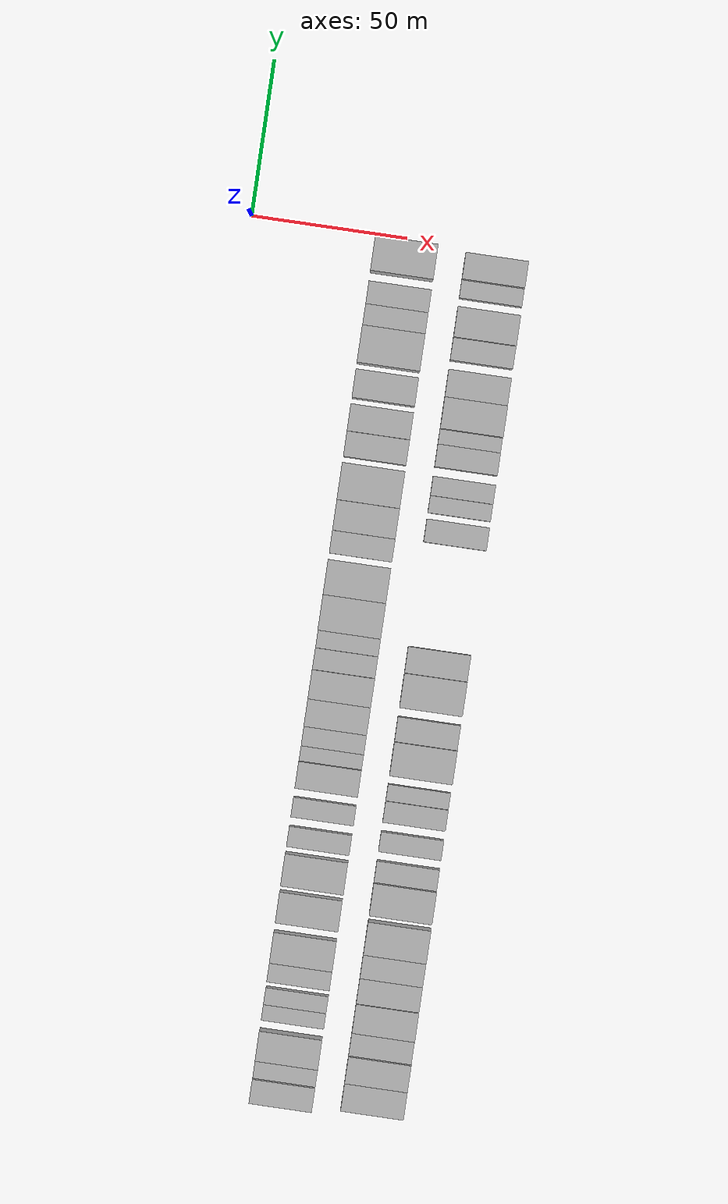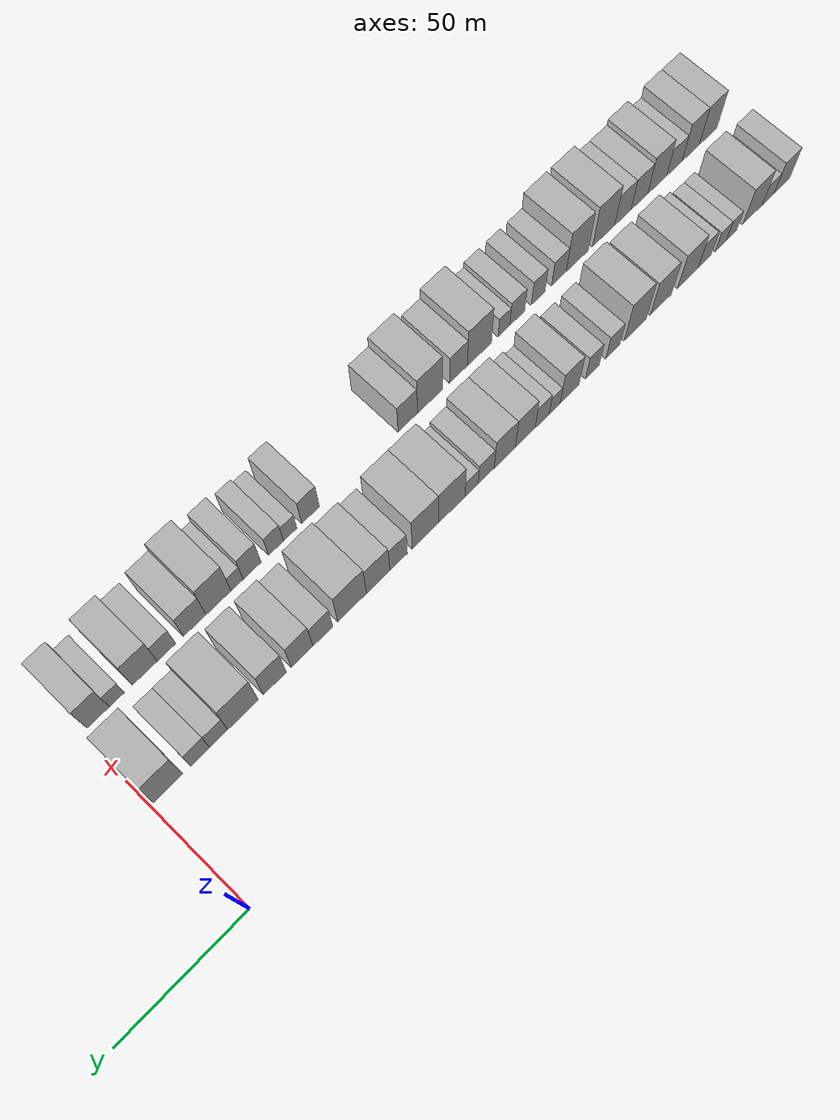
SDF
<sdf version="1.6">
 <world name="default">
  <model name="building_1">
   <static>1</static>
   <pose>50.0000 -274.1434 0 0.000000 0.000000 0.000000</pose>
   <link name="link">
    <pose>0 0 9.00 0 0 0</pose>
    <collision name="collision"><geometry><box><size>20.0000 7.7133 18.0000</size></box></geometry></collision>
    <visual name="visual">
     <cast_shadows>0</cast_shadows>
     <geometry><box><size>20.0000 7.7133 18.0000</size></box></geometry>
     <material>
      <script>
       <uri>model://HANNAS_wall/materials/scripts</uri>
       <uri>model://HANNAS_wall/materials/textures</uri>
       <name>vrc/HANNAS_wall</name>
      </script>
     </material>
    </visual>
   </link>
  </model>
  <model name="building_2">
   <static>1</static>
   <pose>50.0000 -267.2990 0 0.000000 0.000000 0.000000</pose>
   <link name="link">
    <pose>0 0 6.00 0 0 0</pose>
    <collision name="collision"><geometry><box><size>20.0000 5.9753 12.0000</size></box></geometry></collision>
    <visual name="visual">
     <cast_shadows>0</cast_shadows>
     <geometry><box><size>20.0000 5.9753 12.0000</size></box></geometry>
     <material>
      <script>
       <uri>model://HANNAS_wall/materials/scripts</uri>
       <uri>model://HANNAS_wall/materials/textures</uri>
       <name>vrc/HANNAS_wall</name>
      </script>
     </material>
    </visual>
   </link>
  </model>
  <model name="building_3">
   <static>1</static>
   <pose>50.0000 -259.5377 0 0.000000 0.000000 0.000000</pose>
   <link name="link">
    <pose>0 0 10.50 0 0 0</pose>
    <collision name="collision"><geometry><box><size>20.0000 9.5473 21.0000</size></box></geometry></collision>
    <visual name="visual">
     <cast_shadows>0</cast_shadows>
     <geometry><box><size>20.0000 9.5473 21.0000</size></box></geometry>
     <material>
      <script>
       <uri>model://HANNAS_wall/materials/scripts</uri>
       <uri>model://HANNAS_wall/materials/textures</uri>
       <name>vrc/HANNAS_wall</name>
      </script>
     </material>
    </visual>
   </link>
  </model>
  <model name="building_4">
   <static>1</static>
   <pose>50.0000 -249.2695 0 0.000000 0.000000 0.000000</pose>
   <link name="link">
    <pose>0 0 6.00 0 0 0</pose>
    <collision name="collision"><geometry><box><size>20.0000 4.9893 12.0000</size></box></geometry></collision>
    <visual name="visual">
     <cast_shadows>0</cast_shadows>
     <geometry><box><size>20.0000 4.9893 12.0000</size></box></geometry>
     <material>
      <script>
       <uri>model://HANNAS_wall/materials/scripts</uri>
       <uri>model://HANNAS_wall/materials/textures</uri>
       <name>vrc/HANNAS_wall</name>
      </script>
     </material>
    </visual>
   </link>
  </model>
  <model name="building_5">
   <static>1</static>
   <pose>50.0000 -244.0601 0 0.000000 0.000000 0.000000</pose>
   <link name="link">
    <pose>0 0 6.00 0 0 0</pose>
    <collision name="collision"><geometry><box><size>20.0000 5.4295 12.0000</size></box></geometry></collision>
    <visual name="visual">
     <cast_shadows>0</cast_shadows>
     <geometry><box><size>20.0000 5.4295 12.0000</size></box></geometry>
     <material>
      <script>
       <uri>model://HANNAS_wall/materials/scripts</uri>
       <uri>model://HANNAS_wall/materials/textures</uri>
       <name>vrc/HANNAS_wall</name>
      </script>
     </material>
    </visual>
   </link>
  </model>
  <model name="building_6">
   <static>1</static>
   <pose>50.0000 -236.2115 0 0.000000 0.000000 0.000000</pose>
   <link name="link">
    <pose>0 0 7.50 0 0 0</pose>
    <collision name="collision"><geometry><box><size>20.0000 6.2675 15.0000</size></box></geometry></collision>
    <visual name="visual">
     <cast_shadows>0</cast_shadows>
     <geometry><box><size>20.0000 6.2675 15.0000</size></box></geometry>
     <material>
      <script>
       <uri>model://HANNAS_wall/materials/scripts</uri>
       <uri>model://HANNAS_wall/materials/textures</uri>
       <name>vrc/HANNAS_wall</name>
      </script>
     </material>
    </visual>
   </link>
  </model>
  <model name="building_7">
   <static>1</static>
   <pose>50.0000 -228.1773 0 0.000000 0.000000 0.000000</pose>
   <link name="link">
    <pose>0 0 10.50 0 0 0</pose>
    <collision name="collision"><geometry><box><size>20.0000 9.8010 21.0000</size></box></geometry></collision>
    <visual name="visual">
     <cast_shadows>0</cast_shadows>
     <geometry><box><size>20.0000 9.8010 21.0000</size></box></geometry>
     <material>
      <script>
       <uri>model://HANNAS_wall/materials/scripts</uri>
       <uri>model://HANNAS_wall/materials/textures</uri>
       <name>vrc/HANNAS_wall</name>
      </script>
     </material>
    </visual>
   </link>
  </model>
  <model name="building_8">
   <static>1</static>
   <pose>50.0000 -215.3446 0 0.000000 0.000000 0.000000</pose>
   <link name="link">
    <pose>0 0 10.50 0 0 0</pose>
    <collision name="collision"><geometry><box><size>20.0000 9.8645 21.0000</size></box></geometry></collision>
    <visual name="visual">
     <cast_shadows>0</cast_shadows>
     <geometry><box><size>20.0000 9.8645 21.0000</size></box></geometry>
     <material>
      <script>
       <uri>model://HANNAS_wall/materials/scripts</uri>
       <uri>model://HANNAS_wall/materials/textures</uri>
       <name>vrc/HANNAS_wall</name>
      </script>
     </material>
    </visual>
   </link>
  </model>
  <model name="building_9">
   <static>1</static>
   <pose>50.0000 -203.2781 0 0.000000 0.000000 0.000000</pose>
   <link name="link">
    <pose>0 0 12.00 0 0 0</pose>
    <collision name="collision"><geometry><box><size>20.0000 10.2684 24.0000</size></box></geometry></collision>
    <visual name="visual">
     <cast_shadows>0</cast_shadows>
     <geometry><box><size>20.0000 10.2684 24.0000</size></box></geometry>
     <material>
      <script>
       <uri>model://HANNAS_wall/materials/scripts</uri>
       <uri>model://HANNAS_wall/materials/textures</uri>
       <name>vrc/HANNAS_wall</name>
      </script>
     </material>
    </visual>
   </link>
  </model>
  <model name="building_10">
   <static>1</static>
   <pose>50.0000 -192.9101 0 0.000000 0.000000 0.000000</pose>
   <link name="link">
    <pose>0 0 7.50 0 0 0</pose>
    <collision name="collision"><geometry><box><size>20.0000 6.4676 15.0000</size></box></geometry></collision>
    <visual name="visual">
     <cast_shadows>0</cast_shadows>
     <geometry><box><size>20.0000 6.4676 15.0000</size></box></geometry>
     <material>
      <script>
       <uri>model://HANNAS_wall/materials/scripts</uri>
       <uri>model://HANNAS_wall/materials/textures</uri>
       <name>vrc/HANNAS_wall</name>
      </script>
     </material>
    </visual>
   </link>
  </model>
  <model name="building_11">
   <static>1</static>
   <pose>50.0000 -183.5272 0 0.000000 0.000000 0.000000</pose>
   <link name="link">
    <pose>0 0 7.50 0 0 0</pose>
    <collision name="collision"><geometry><box><size>20.0000 6.2981 15.0000</size></box></geometry></collision>
    <visual name="visual">
     <cast_shadows>0</cast_shadows>
     <geometry><box><size>20.0000 6.2981 15.0000</size></box></geometry>
     <material>
      <script>
       <uri>model://HANNAS_wall/materials/scripts</uri>
       <uri>model://HANNAS_wall/materials/textures</uri>
       <name>vrc/HANNAS_wall</name>
      </script>
     </material>
    </visual>
   </link>
  </model>
  <model name="building_12">
   <static>1</static>
   <pose>50.0000 -173.1050 0 0.000000 0.000000 0.000000</pose>
   <link name="link">
    <pose>0 0 10.50 0 0 0</pose>
    <collision name="collision"><geometry><box><size>20.0000 8.5462 21.0000</size></box></geometry></collision>
    <visual name="visual">
     <cast_shadows>0</cast_shadows>
     <geometry><box><size>20.0000 8.5462 21.0000</size></box></geometry>
     <material>
      <script>
       <uri>model://HANNAS_wall/materials/scripts</uri>
       <uri>model://HANNAS_wall/materials/textures</uri>
       <name>vrc/HANNAS_wall</name>
      </script>
     </material>
    </visual>
   </link>
  </model>
  <model name="building_13">
   <static>1</static>
   <pose>50.0000 -166.3974 0 0.000000 0.000000 0.000000</pose>
   <link name="link">
    <pose>0 0 6.00 0 0 0</pose>
    <collision name="collision"><geometry><box><size>20.0000 4.8691 12.0000</size></box></geometry></collision>
    <visual name="visual">
     <cast_shadows>0</cast_shadows>
     <geometry><box><size>20.0000 4.8691 12.0000</size></box></geometry>
     <material>
      <script>
       <uri>model://HANNAS_wall/materials/scripts</uri>
       <uri>model://HANNAS_wall/materials/textures</uri>
       <name>vrc/HANNAS_wall</name>
      </script>
     </material>
    </visual>
   </link>
  </model>
  <model name="building_14">
   <static>1</static>
   <pose>50.0000 -160.8092 0 0.000000 0.000000 0.000000</pose>
   <link name="link">
    <pose>0 0 7.50 0 0 0</pose>
    <collision name="collision"><geometry><box><size>20.0000 6.3073 15.0000</size></box></geometry></collision>
    <visual name="visual">
     <cast_shadows>0</cast_shadows>
     <geometry><box><size>20.0000 6.3073 15.0000</size></box></geometry>
     <material>
      <script>
       <uri>model://HANNAS_wall/materials/scripts</uri>
       <uri>model://HANNAS_wall/materials/textures</uri>
       <name>vrc/HANNAS_wall</name>
      </script>
     </material>
    </visual>
   </link>
  </model>
  <model name="building_15">
   <static>1</static>
   <pose>50.0000 -153.2628 0 0.000000 0.000000 0.000000</pose>
   <link name="link">
    <pose>0 0 10.50 0 0 0</pose>
    <collision name="collision"><geometry><box><size>20.0000 8.7855 21.0000</size></box></geometry></collision>
    <visual name="visual">
     <cast_shadows>0</cast_shadows>
     <geometry><box><size>20.0000 8.7855 21.0000</size></box></geometry>
     <material>
      <script>
       <uri>model://HANNAS_wall/materials/scripts</uri>
       <uri>model://HANNAS_wall/materials/textures</uri>
       <name>vrc/HANNAS_wall</name>
      </script>
     </material>
    </visual>
   </link>
  </model>
  <model name="building_16">
   <static>1</static>
   <pose>50.0000 -144.2227 0 0.000000 0.000000 0.000000</pose>
   <link name="link">
    <pose>0 0 10.50 0 0 0</pose>
    <collision name="collision"><geometry><box><size>20.0000 9.2948 21.0000</size></box></geometry></collision>
    <visual name="visual">
     <cast_shadows>0</cast_shadows>
     <geometry><box><size>20.0000 9.2948 21.0000</size></box></geometry>
     <material>
      <script>
       <uri>model://HANNAS_wall/materials/scripts</uri>
       <uri>model://HANNAS_wall/materials/textures</uri>
       <name>vrc/HANNAS_wall</name>
      </script>
     </material>
    </visual>
   </link>
  </model>
  <model name="building_17">
   <static>1</static>
   <pose>50.0000 -136.1297 0 0.000000 0.000000 0.000000</pose>
   <link name="link">
    <pose>0 0 7.50 0 0 0</pose>
    <collision name="collision"><geometry><box><size>20.0000 6.8911 15.0000</size></box></geometry></collision>
    <visual name="visual">
     <cast_shadows>0</cast_shadows>
     <geometry><box><size>20.0000 6.8911 15.0000</size></box></geometry>
     <material>
      <script>
       <uri>model://HANNAS_wall/materials/scripts</uri>
       <uri>model://HANNAS_wall/materials/textures</uri>
       <name>vrc/HANNAS_wall</name>
      </script>
     </material>
    </visual>
   </link>
  </model>
  <model name="building_18">
   <static>1</static>
   <pose>50.0000 -129.8239 0 0.000000 0.000000 0.000000</pose>
   <link name="link">
    <pose>0 0 6.00 0 0 0</pose>
    <collision name="collision"><geometry><box><size>20.0000 5.7206 12.0000</size></box></geometry></collision>
    <visual name="visual">
     <cast_shadows>0</cast_shadows>
     <geometry><box><size>20.0000 5.7206 12.0000</size></box></geometry>
     <material>
      <script>
       <uri>model://HANNAS_wall/materials/scripts</uri>
       <uri>model://HANNAS_wall/materials/textures</uri>
       <name>vrc/HANNAS_wall</name>
      </script>
     </material>
    </visual>
   </link>
  </model>
  <model name="building_19">
   <static>1</static>
   <pose>50.0000 -121.2929 0 0.000000 0.000000 0.000000</pose>
   <link name="link">
    <pose>0 0 12.00 0 0 0</pose>
    <collision name="collision"><geometry><box><size>20.0000 11.3414 24.0000</size></box></geometry></collision>
    <visual name="visual">
     <cast_shadows>0</cast_shadows>
     <geometry><box><size>20.0000 11.3414 24.0000</size></box></geometry>
     <material>
      <script>
       <uri>model://HANNAS_wall/materials/scripts</uri>
       <uri>model://HANNAS_wall/materials/textures</uri>
       <name>vrc/HANNAS_wall</name>
      </script>
     </material>
    </visual>
   </link>
  </model>
  <model name="building_20">
   <static>1</static>
   <pose>50.0000 -110.0250 0 0.000000 0.000000 0.000000</pose>
   <link name="link">
    <pose>0 0 12.00 0 0 0</pose>
    <collision name="collision"><geometry><box><size>20.0000 11.1943 24.0000</size></box></geometry></collision>
    <visual name="visual">
     <cast_shadows>0</cast_shadows>
     <geometry><box><size>20.0000 11.1943 24.0000</size></box></geometry>
     <material>
      <script>
       <uri>model://HANNAS_wall/materials/scripts</uri>
       <uri>model://HANNAS_wall/materials/textures</uri>
       <name>vrc/HANNAS_wall</name>
      </script>
     </material>
    </visual>
   </link>
  </model>
  <model name="building_21">
   <static>1</static>
   <pose>50.0000 -98.7826 0 0.000000 0.000000 0.000000</pose>
   <link name="link">
    <pose>0 0 9.00 0 0 0</pose>
    <collision name="collision"><geometry><box><size>20.0000 7.2906 18.0000</size></box></geometry></collision>
    <visual name="visual">
     <cast_shadows>0</cast_shadows>
     <geometry><box><size>20.0000 7.2906 18.0000</size></box></geometry>
     <material>
      <script>
       <uri>model://HANNAS_wall/materials/scripts</uri>
       <uri>model://HANNAS_wall/materials/textures</uri>
       <name>vrc/HANNAS_wall</name>
      </script>
     </material>
    </visual>
   </link>
  </model>
  <model name="building_22">
   <static>1</static>
   <pose>50.0000 -90.2696 0 0.000000 0.000000 0.000000</pose>
   <link name="link">
    <pose>0 0 10.50 0 0 0</pose>
    <collision name="collision"><geometry><box><size>20.0000 9.7353 21.0000</size></box></geometry></collision>
    <visual name="visual">
     <cast_shadows>0</cast_shadows>
     <geometry><box><size>20.0000 9.7353 21.0000</size></box></geometry>
     <material>
      <script>
       <uri>model://HANNAS_wall/materials/scripts</uri>
       <uri>model://HANNAS_wall/materials/textures</uri>
       <name>vrc/HANNAS_wall</name>
      </script>
     </material>
    </visual>
   </link>
  </model>
  <model name="building_23">
   <static>1</static>
   <pose>50.0000 -79.4878 0 0.000000 0.000000 0.000000</pose>
   <link name="link">
    <pose>0 0 12.00 0 0 0</pose>
    <collision name="collision"><geometry><box><size>20.0000 11.8283 24.0000</size></box></geometry></collision>
    <visual name="visual">
     <cast_shadows>0</cast_shadows>
     <geometry><box><size>20.0000 11.8283 24.0000</size></box></geometry>
     <material>
      <script>
       <uri>model://HANNAS_wall/materials/scripts</uri>
       <uri>model://HANNAS_wall/materials/textures</uri>
       <name>vrc/HANNAS_wall</name>
      </script>
     </material>
    </visual>
   </link>
  </model>
  <model name="building_24">
   <static>1</static>
   <pose>50.0000 -67.5209 0 0.000000 0.000000 0.000000</pose>
   <link name="link">
    <pose>0 0 9.00 0 0 0</pose>
    <collision name="collision"><geometry><box><size>20.0000 8.1056 18.0000</size></box></geometry></collision>
    <visual name="visual">
     <cast_shadows>0</cast_shadows>
     <geometry><box><size>20.0000 8.1056 18.0000</size></box></geometry>
     <material>
      <script>
       <uri>model://HANNAS_wall/materials/scripts</uri>
       <uri>model://HANNAS_wall/materials/textures</uri>
       <name>vrc/HANNAS_wall</name>
      </script>
     </material>
    </visual>
   </link>
  </model>
  <model name="building_25">
   <static>1</static>
   <pose>50.0000 -59.1467 0 0.000000 0.000000 0.000000</pose>
   <link name="link">
    <pose>0 0 10.50 0 0 0</pose>
    <collision name="collision"><geometry><box><size>20.0000 8.6426 21.0000</size></box></geometry></collision>
    <visual name="visual">
     <cast_shadows>0</cast_shadows>
     <geometry><box><size>20.0000 8.6426 21.0000</size></box></geometry>
     <material>
      <script>
       <uri>model://HANNAS_wall/materials/scripts</uri>
       <uri>model://HANNAS_wall/materials/textures</uri>
       <name>vrc/HANNAS_wall</name>
      </script>
     </material>
    </visual>
   </link>
  </model>
  <model name="building_26">
   <static>1</static>
   <pose>50.0000 -48.2642 0 0.000000 0.000000 0.000000</pose>
   <link name="link">
    <pose>0 0 10.50 0 0 0</pose>
    <collision name="collision"><geometry><box><size>20.0000 9.1225 21.0000</size></box></geometry></collision>
    <visual name="visual">
     <cast_shadows>0</cast_shadows>
     <geometry><box><size>20.0000 9.1225 21.0000</size></box></geometry>
     <material>
      <script>
       <uri>model://HANNAS_wall/materials/scripts</uri>
       <uri>model://HANNAS_wall/materials/textures</uri>
       <name>vrc/HANNAS_wall</name>
      </script>
     </material>
    </visual>
   </link>
  </model>
  <model name="building_27">
   <static>1</static>
   <pose>50.0000 -35.7431 0 0.000000 0.000000 0.000000</pose>
   <link name="link">
    <pose>0 0 12.00 0 0 0</pose>
    <collision name="collision"><geometry><box><size>20.0000 11.9196 24.0000</size></box></geometry></collision>
    <visual name="visual">
     <cast_shadows>0</cast_shadows>
     <geometry><box><size>20.0000 11.9196 24.0000</size></box></geometry>
     <material>
      <script>
       <uri>model://HANNAS_wall/materials/scripts</uri>
       <uri>model://HANNAS_wall/materials/textures</uri>
       <name>vrc/HANNAS_wall</name>
      </script>
     </material>
    </visual>
   </link>
  </model>
  <model name="building_28">
   <static>1</static>
   <pose>50.0000 -26.2708 0 0.000000 0.000000 0.000000</pose>
   <link name="link">
    <pose>0 0 7.50 0 0 0</pose>
    <collision name="collision"><geometry><box><size>20.0000 7.0249 15.0000</size></box></geometry></collision>
    <visual name="visual">
     <cast_shadows>0</cast_shadows>
     <geometry><box><size>20.0000 7.0249 15.0000</size></box></geometry>
     <material>
      <script>
       <uri>model://HANNAS_wall/materials/scripts</uri>
       <uri>model://HANNAS_wall/materials/textures</uri>
       <name>vrc/HANNAS_wall</name>
      </script>
     </material>
    </visual>
   </link>
  </model>
  <model name="building_29">
   <static>1</static>
   <pose>50.0000 -19.1075 0 0.000000 0.000000 0.000000</pose>
   <link name="link">
    <pose>0 0 7.50 0 0 0</pose>
    <collision name="collision"><geometry><box><size>20.0000 7.3019 15.0000</size></box></geometry></collision>
    <visual name="visual">
     <cast_shadows>0</cast_shadows>
     <geometry><box><size>20.0000 7.3019 15.0000</size></box></geometry>
     <material>
      <script>
       <uri>model://HANNAS_wall/materials/scripts</uri>
       <uri>model://HANNAS_wall/materials/textures</uri>
       <name>vrc/HANNAS_wall</name>
      </script>
     </material>
    </visual>
   </link>
  </model>
  <model name="building_30">
   <static>1</static>
   <pose>50.0000 -6.8687 0 0.000000 0.000000 0.000000</pose>
   <link name="link">
    <pose>0 0 12.00 0 0 0</pose>
    <collision name="collision"><geometry><box><size>20.0000 11.1757 24.0000</size></box></geometry></collision>
    <visual name="visual">
     <cast_shadows>0</cast_shadows>
     <geometry><box><size>20.0000 11.1757 24.0000</size></box></geometry>
     <material>
      <script>
       <uri>model://HANNAS_wall/materials/scripts</uri>
       <uri>model://HANNAS_wall/materials/textures</uri>
       <name>vrc/HANNAS_wall</name>
      </script>
     </material>
    </visual>
   </link>
  </model>
  <model name="building_61">
   <static>1</static>
   <pose>79.0000 -271.6310 0 0.000000 0.000000 0.000000</pose>
   <link name="link">
    <pose>0 0 10.50 0 0 0</pose>
    <collision name="collision"><geometry><box><size>20.0000 8.7380 21.0000</size></box></geometry></collision>
    <visual name="visual">
     <cast_shadows>0</cast_shadows>
     <geometry><box><size>20.0000 8.7380 21.0000</size></box></geometry>
     <material>
      <script>
       <uri>model://HANNAS_wall/materials/scripts</uri>
       <uri>model://HANNAS_wall/materials/textures</uri>
       <name>vrc/HANNAS_wall</name>
      </script>
     </material>
    </visual>
   </link>
  </model>
  <model name="building_62">
   <static>1</static>
   <pose>79.0000 -262.9829 0 0.000000 0.000000 0.000000</pose>
   <link name="link">
    <pose>0 0 10.50 0 0 0</pose>
    <collision name="collision"><geometry><box><size>20.0000 8.5583 21.0000</size></box></geometry></collision>
    <visual name="visual">
     <cast_shadows>0</cast_shadows>
     <geometry><box><size>20.0000 8.5583 21.0000</size></box></geometry>
     <material>
      <script>
       <uri>model://HANNAS_wall/materials/scripts</uri>
       <uri>model://HANNAS_wall/materials/textures</uri>
       <name>vrc/HANNAS_wall</name>
      </script>
     </material>
    </visual>
   </link>
  </model>
  <model name="building_63">
   <static>1</static>
   <pose>79.0000 -254.9551 0 0.000000 0.000000 0.000000</pose>
   <link name="link">
    <pose>0 0 7.50 0 0 0</pose>
    <collision name="collision"><geometry><box><size>20.0000 7.4973 15.0000</size></box></geometry></collision>
    <visual name="visual">
     <cast_shadows>0</cast_shadows>
     <geometry><box><size>20.0000 7.4973 15.0000</size></box></geometry>
     <material>
      <script>
       <uri>model://HANNAS_wall/materials/scripts</uri>
       <uri>model://HANNAS_wall/materials/textures</uri>
       <name>vrc/HANNAS_wall</name>
      </script>
     </material>
    </visual>
   </link>
  </model>
  <model name="building_64">
   <static>1</static>
   <pose>79.0000 -246.5809 0 0.000000 0.000000 0.000000</pose>
   <link name="link">
    <pose>0 0 10.50 0 0 0</pose>
    <collision name="collision"><geometry><box><size>20.0000 9.2510 21.0000</size></box></geometry></collision>
    <visual name="visual">
     <cast_shadows>0</cast_shadows>
     <geometry><box><size>20.0000 9.2510 21.0000</size></box></geometry>
     <material>
      <script>
       <uri>model://HANNAS_wall/materials/scripts</uri>
       <uri>model://HANNAS_wall/materials/textures</uri>
       <name>vrc/HANNAS_wall</name>
      </script>
     </material>
    </visual>
   </link>
  </model>
  <model name="building_65">
   <static>1</static>
   <pose>79.0000 -237.9402 0 0.000000 0.000000 0.000000</pose>
   <link name="link">
    <pose>0 0 9.00 0 0 0</pose>
    <collision name="collision"><geometry><box><size>20.0000 8.0304 18.0000</size></box></geometry></collision>
    <visual name="visual">
     <cast_shadows>0</cast_shadows>
     <geometry><box><size>20.0000 8.0304 18.0000</size></box></geometry>
     <material>
      <script>
       <uri>model://HANNAS_wall/materials/scripts</uri>
       <uri>model://HANNAS_wall/materials/textures</uri>
       <name>vrc/HANNAS_wall</name>
      </script>
     </material>
    </visual>
   </link>
  </model>
  <model name="building_66">
   <static>1</static>
   <pose>79.0000 -230.0415 0 0.000000 0.000000 0.000000</pose>
   <link name="link">
    <pose>0 0 9.00 0 0 0</pose>
    <collision name="collision"><geometry><box><size>20.0000 7.7669 18.0000</size></box></geometry></collision>
    <visual name="visual">
     <cast_shadows>0</cast_shadows>
     <geometry><box><size>20.0000 7.7669 18.0000</size></box></geometry>
     <material>
      <script>
       <uri>model://HANNAS_wall/materials/scripts</uri>
       <uri>model://HANNAS_wall/materials/textures</uri>
       <name>vrc/HANNAS_wall</name>
      </script>
     </material>
    </visual>
   </link>
  </model>
  <model name="building_67">
   <static>1</static>
   <pose>79.0000 -220.9035 0 0.000000 0.000000 0.000000</pose>
   <link name="link">
    <pose>0 0 12.00 0 0 0</pose>
    <collision name="collision"><geometry><box><size>20.0000 10.5091 24.0000</size></box></geometry></collision>
    <visual name="visual">
     <cast_shadows>0</cast_shadows>
     <geometry><box><size>20.0000 10.5091 24.0000</size></box></geometry>
     <material>
      <script>
       <uri>model://HANNAS_wall/materials/scripts</uri>
       <uri>model://HANNAS_wall/materials/textures</uri>
       <name>vrc/HANNAS_wall</name>
      </script>
     </material>
    </visual>
   </link>
  </model>
  <model name="building_68">
   <static>1</static>
   <pose>79.0000 -208.5019 0 0.000000 0.000000 0.000000</pose>
   <link name="link">
    <pose>0 0 12.00 0 0 0</pose>
    <collision name="collision"><geometry><box><size>20.0000 10.2941 24.0000</size></box></geometry></collision>
    <visual name="visual">
     <cast_shadows>0</cast_shadows>
     <geometry><box><size>20.0000 10.2941 24.0000</size></box></geometry>
     <material>
      <script>
       <uri>model://HANNAS_wall/materials/scripts</uri>
       <uri>model://HANNAS_wall/materials/textures</uri>
       <name>vrc/HANNAS_wall</name>
      </script>
     </material>
    </visual>
   </link>
  </model>
  <model name="building_69">
   <static>1</static>
   <pose>79.0000 -199.9437 0 0.000000 0.000000 0.000000</pose>
   <link name="link">
    <pose>0 0 7.50 0 0 0</pose>
    <collision name="collision"><geometry><box><size>20.0000 6.8224 15.0000</size></box></geometry></collision>
    <visual name="visual">
     <cast_shadows>0</cast_shadows>
     <geometry><box><size>20.0000 6.8224 15.0000</size></box></geometry>
     <material>
      <script>
       <uri>model://HANNAS_wall/materials/scripts</uri>
       <uri>model://HANNAS_wall/materials/textures</uri>
       <name>vrc/HANNAS_wall</name>
      </script>
     </material>
    </visual>
   </link>
  </model>
  <model name="building_70">
   <static>1</static>
   <pose>79.0000 -190.3543 0 0.000000 0.000000 0.000000</pose>
   <link name="link">
    <pose>0 0 7.50 0 0 0</pose>
    <collision name="collision"><geometry><box><size>20.0000 6.3563 15.0000</size></box></geometry></collision>
    <visual name="visual">
     <cast_shadows>0</cast_shadows>
     <geometry><box><size>20.0000 6.3563 15.0000</size></box></geometry>
     <material>
      <script>
       <uri>model://HANNAS_wall/materials/scripts</uri>
       <uri>model://HANNAS_wall/materials/textures</uri>
       <name>vrc/HANNAS_wall</name>
      </script>
     </material>
    </visual>
   </link>
  </model>
  <model name="building_71">
   <static>1</static>
   <pose>79.0000 -180.7851 0 0.000000 0.000000 0.000000</pose>
   <link name="link">
    <pose>0 0 7.50 0 0 0</pose>
    <collision name="collision"><geometry><box><size>20.0000 6.7821 15.0000</size></box></geometry></collision>
    <visual name="visual">
     <cast_shadows>0</cast_shadows>
     <geometry><box><size>20.0000 6.7821 15.0000</size></box></geometry>
     <material>
      <script>
       <uri>model://HANNAS_wall/materials/scripts</uri>
       <uri>model://HANNAS_wall/materials/textures</uri>
       <name>vrc/HANNAS_wall</name>
      </script>
     </material>
    </visual>
   </link>
  </model>
  <model name="building_72">
   <static>1</static>
   <pose>79.0000 -174.7479 0 0.000000 0.000000 0.000000</pose>
   <link name="link">
    <pose>0 0 6.00 0 0 0</pose>
    <collision name="collision"><geometry><box><size>20.0000 5.2924 12.0000</size></box></geometry></collision>
    <visual name="visual">
     <cast_shadows>0</cast_shadows>
     <geometry><box><size>20.0000 5.2924 12.0000</size></box></geometry>
     <material>
      <script>
       <uri>model://HANNAS_wall/materials/scripts</uri>
       <uri>model://HANNAS_wall/materials/textures</uri>
       <name>vrc/HANNAS_wall</name>
      </script>
     </material>
    </visual>
   </link>
  </model>
  <model name="building_73">
   <static>1</static>
   <pose>79.0000 -163.7200 0 0.000000 0.000000 0.000000</pose>
   <link name="link">
    <pose>0 0 12.00 0 0 0</pose>
    <collision name="collision"><geometry><box><size>20.0000 10.7635 24.0000</size></box></geometry></collision>
    <visual name="visual">
     <cast_shadows>0</cast_shadows>
     <geometry><box><size>20.0000 10.7635 24.0000</size></box></geometry>
     <material>
      <script>
       <uri>model://HANNAS_wall/materials/scripts</uri>
       <uri>model://HANNAS_wall/materials/textures</uri>
       <name>vrc/HANNAS_wall</name>
      </script>
     </material>
    </visual>
   </link>
  </model>
  <model name="building_74">
   <static>1</static>
   <pose>79.0000 -154.3717 0 0.000000 0.000000 0.000000</pose>
   <link name="link">
    <pose>0 0 9.00 0 0 0</pose>
    <collision name="collision"><geometry><box><size>20.0000 7.9330 18.0000</size></box></geometry></collision>
    <visual name="visual">
     <cast_shadows>0</cast_shadows>
     <geometry><box><size>20.0000 7.9330 18.0000</size></box></geometry>
     <material>
      <script>
       <uri>model://HANNAS_wall/materials/scripts</uri>
       <uri>model://HANNAS_wall/materials/textures</uri>
       <name>vrc/HANNAS_wall</name>
      </script>
     </material>
    </visual>
   </link>
  </model>
  <model name="building_75">
   <static>1</static>
   <pose>79.0000 -141.9218 0 0.000000 0.000000 0.000000</pose>
   <link name="link">
    <pose>0 0 12.00 0 0 0</pose>
    <collision name="collision"><geometry><box><size>20.0000 10.9670 24.0000</size></box></geometry></collision>
    <visual name="visual">
     <cast_shadows>0</cast_shadows>
     <geometry><box><size>20.0000 10.9670 24.0000</size></box></geometry>
     <material>
      <script>
       <uri>model://HANNAS_wall/materials/scripts</uri>
       <uri>model://HANNAS_wall/materials/textures</uri>
       <name>vrc/HANNAS_wall</name>
      </script>
     </material>
    </visual>
   </link>
  </model>
  <model name="building_76">
   <static>1</static>
   <pose>79.0000 -132.2212 0 0.000000 0.000000 0.000000</pose>
   <link name="link">
    <pose>0 0 9.00 0 0 0</pose>
    <collision name="collision"><geometry><box><size>20.0000 8.4341 18.0000</size></box></geometry></collision>
    <visual name="visual">
     <cast_shadows>0</cast_shadows>
     <geometry><box><size>20.0000 8.4341 18.0000</size></box></geometry>
     <material>
      <script>
       <uri>model://HANNAS_wall/materials/scripts</uri>
       <uri>model://HANNAS_wall/materials/textures</uri>
       <name>vrc/HANNAS_wall</name>
      </script>
     </material>
    </visual>
   </link>
  </model>
  <model name="building_77">
   <static>1</static>
   <pose>79.0000 -90.9588 0 0.000000 0.000000 0.000000</pose>
   <link name="link">
    <pose>0 0 9.00 0 0 0</pose>
    <collision name="collision"><geometry><box><size>20.0000 7.3636 18.0000</size></box></geometry></collision>
    <visual name="visual">
     <cast_shadows>0</cast_shadows>
     <geometry><box><size>20.0000 7.3636 18.0000</size></box></geometry>
     <material>
      <script>
       <uri>model://HANNAS_wall/materials/scripts</uri>
       <uri>model://HANNAS_wall/materials/textures</uri>
       <name>vrc/HANNAS_wall</name>
      </script>
     </material>
    </visual>
   </link>
  </model>
  <model name="building_78">
   <static>1</static>
   <pose>79.0000 -82.5237 0 0.000000 0.000000 0.000000</pose>
   <link name="link">
    <pose>0 0 6.00 0 0 0</pose>
    <collision name="collision"><geometry><box><size>20.0000 5.5066 12.0000</size></box></geometry></collision>
    <visual name="visual">
     <cast_shadows>0</cast_shadows>
     <geometry><box><size>20.0000 5.5066 12.0000</size></box></geometry>
     <material>
      <script>
       <uri>model://HANNAS_wall/materials/scripts</uri>
       <uri>model://HANNAS_wall/materials/textures</uri>
       <name>vrc/HANNAS_wall</name>
      </script>
     </material>
    </visual>
   </link>
  </model>
  <model name="building_79">
   <static>1</static>
   <pose>79.0000 -76.7023 0 0.000000 0.000000 0.000000</pose>
   <link name="link">
    <pose>0 0 7.50 0 0 0</pose>
    <collision name="collision"><geometry><box><size>20.0000 6.1362 15.0000</size></box></geometry></collision>
    <visual name="visual">
     <cast_shadows>0</cast_shadows>
     <geometry><box><size>20.0000 6.1362 15.0000</size></box></geometry>
     <material>
      <script>
       <uri>model://HANNAS_wall/materials/scripts</uri>
       <uri>model://HANNAS_wall/materials/textures</uri>
       <name>vrc/HANNAS_wall</name>
      </script>
     </material>
    </visual>
   </link>
  </model>
  <model name="building_80">
   <static>1</static>
   <pose>79.0000 -67.0173 0 0.000000 0.000000 0.000000</pose>
   <link name="link">
    <pose>0 0 9.00 0 0 0</pose>
    <collision name="collision"><geometry><box><size>20.0000 7.2337 18.0000</size></box></geometry></collision>
    <visual name="visual">
     <cast_shadows>0</cast_shadows>
     <geometry><box><size>20.0000 7.2337 18.0000</size></box></geometry>
     <material>
      <script>
       <uri>model://HANNAS_wall/materials/scripts</uri>
       <uri>model://HANNAS_wall/materials/textures</uri>
       <name>vrc/HANNAS_wall</name>
      </script>
     </material>
    </visual>
   </link>
  </model>
  <model name="building_81">
   <static>1</static>
   <pose>79.0000 -60.9617 0 0.000000 0.000000 0.000000</pose>
   <link name="link">
    <pose>0 0 6.00 0 0 0</pose>
    <collision name="collision"><geometry><box><size>20.0000 4.8775 12.0000</size></box></geometry></collision>
    <visual name="visual">
     <cast_shadows>0</cast_shadows>
     <geometry><box><size>20.0000 4.8775 12.0000</size></box></geometry>
     <material>
      <script>
       <uri>model://HANNAS_wall/materials/scripts</uri>
       <uri>model://HANNAS_wall/materials/textures</uri>
       <name>vrc/HANNAS_wall</name>
      </script>
     </material>
    </visual>
   </link>
  </model>
  <model name="building_82">
   <static>1</static>
   <pose>79.0000 -53.4946 0 0.000000 0.000000 0.000000</pose>
   <link name="link">
    <pose>0 0 12.00 0 0 0</pose>
    <collision name="collision"><geometry><box><size>20.0000 10.0567 24.0000</size></box></geometry></collision>
    <visual name="visual">
     <cast_shadows>0</cast_shadows>
     <geometry><box><size>20.0000 10.0567 24.0000</size></box></geometry>
     <material>
      <script>
       <uri>model://HANNAS_wall/materials/scripts</uri>
       <uri>model://HANNAS_wall/materials/textures</uri>
       <name>vrc/HANNAS_wall</name>
      </script>
     </material>
    </visual>
   </link>
  </model>
  <model name="building_83">
   <static>1</static>
   <pose>79.0000 -44.0027 0 0.000000 0.000000 0.000000</pose>
   <link name="link">
    <pose>0 0 9.00 0 0 0</pose>
    <collision name="collision"><geometry><box><size>20.0000 8.9270 18.0000</size></box></geometry></collision>
    <visual name="visual">
     <cast_shadows>0</cast_shadows>
     <geometry><box><size>20.0000 8.9270 18.0000</size></box></geometry>
     <material>
      <script>
       <uri>model://HANNAS_wall/materials/scripts</uri>
       <uri>model://HANNAS_wall/materials/textures</uri>
       <name>vrc/HANNAS_wall</name>
      </script>
     </material>
    </visual>
   </link>
  </model>
  <model name="building_84">
   <static>1</static>
   <pose>79.0000 -32.9252 0 0.000000 0.000000 0.000000</pose>
   <link name="link">
    <pose>0 0 7.50 0 0 0</pose>
    <collision name="collision"><geometry><box><size>20.0000 7.2282 15.0000</size></box></geometry></collision>
    <visual name="visual">
     <cast_shadows>0</cast_shadows>
     <geometry><box><size>20.0000 7.2282 15.0000</size></box></geometry>
     <material>
      <script>
       <uri>model://HANNAS_wall/materials/scripts</uri>
       <uri>model://HANNAS_wall/materials/textures</uri>
       <name>vrc/HANNAS_wall</name>
      </script>
     </material>
    </visual>
   </link>
  </model>
  <model name="building_85">
   <static>1</static>
   <pose>79.0000 -24.4576 0 0.000000 0.000000 0.000000</pose>
   <link name="link">
    <pose>0 0 10.50 0 0 0</pose>
    <collision name="collision"><geometry><box><size>20.0000 9.7070 21.0000</size></box></geometry></collision>
    <visual name="visual">
     <cast_shadows>0</cast_shadows>
     <geometry><box><size>20.0000 9.7070 21.0000</size></box></geometry>
     <material>
      <script>
       <uri>model://HANNAS_wall/materials/scripts</uri>
       <uri>model://HANNAS_wall/materials/textures</uri>
       <name>vrc/HANNAS_wall</name>
      </script>
     </material>
    </visual>
   </link>
  </model>
  <model name="building_86">
   <static>1</static>
   <pose>79.0000 -13.7287 0 0.000000 0.000000 0.000000</pose>
   <link name="link">
    <pose>0 0 6.00 0 0 0</pose>
    <collision name="collision"><geometry><box><size>20.0000 5.7506 12.0000</size></box></geometry></collision>
    <visual name="visual">
     <cast_shadows>0</cast_shadows>
     <geometry><box><size>20.0000 5.7506 12.0000</size></box></geometry>
     <material>
      <script>
       <uri>model://HANNAS_wall/materials/scripts</uri>
       <uri>model://HANNAS_wall/materials/textures</uri>
       <name>vrc/HANNAS_wall</name>
      </script>
     </material>
    </visual>
   </link>
  </model>
  <model name="building_87">
   <static>1</static>
   <pose>79.0000 -6.6192 0 0.000000 0.000000 0.000000</pose>
   <link name="link">
    <pose>0 0 10.50 0 0 0</pose>
    <collision name="collision"><geometry><box><size>20.0000 8.4685 21.0000</size></box></geometry></collision>
    <visual name="visual">
     <cast_shadows>0</cast_shadows>
     <geometry><box><size>20.0000 8.4685 21.0000</size></box></geometry>
     <material>
      <script>
       <uri>model://HANNAS_wall/materials/scripts</uri>
       <uri>model://HANNAS_wall/materials/textures</uri>
       <name>vrc/HANNAS_wall</name>
      </script>
     </material>
    </visual>
   </link>
  </model>
 </world>
</sdf>
